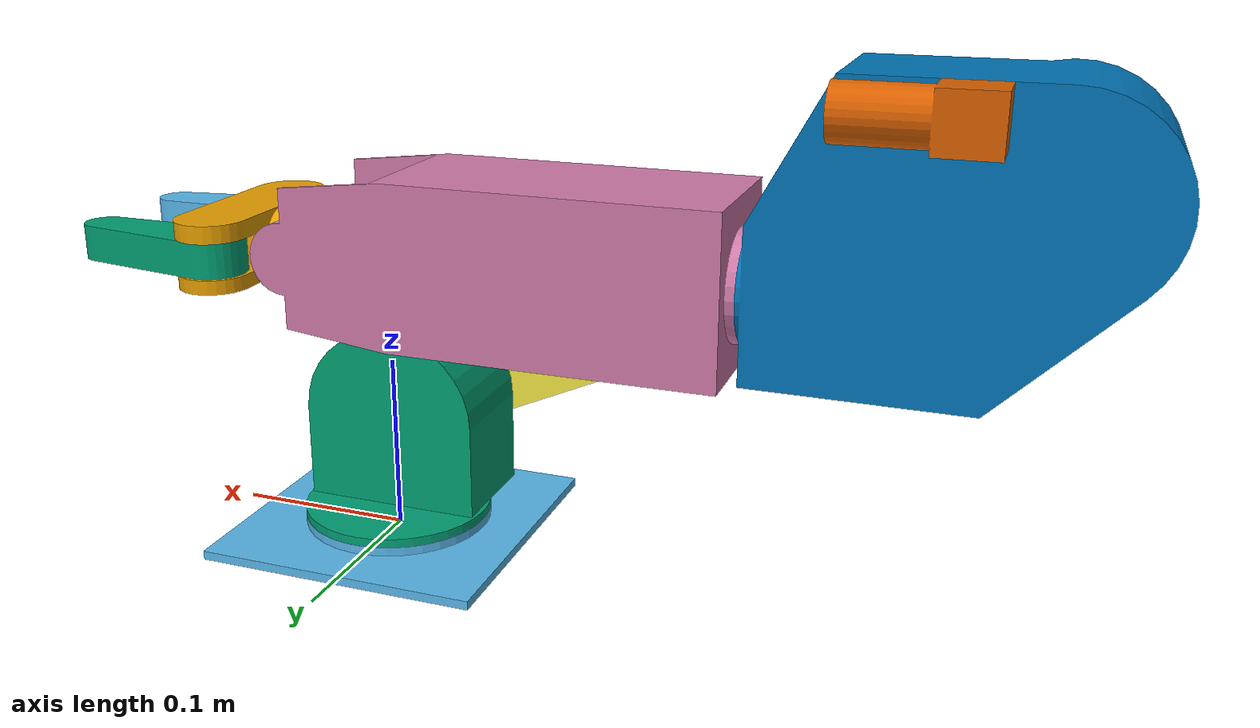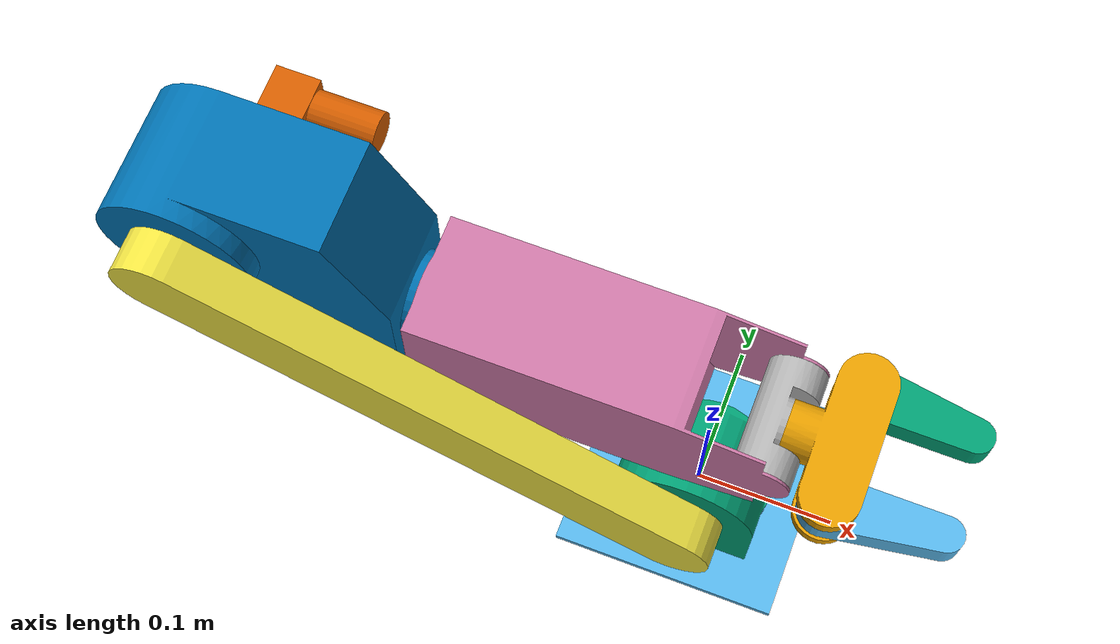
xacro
<?xml version="1.0"?>
<robot xmlns:xacro="http://www.ros.org/wiki/xacro" name="generated_robot">
    <xacro:arg name="initial_positions_file" default="initial_positions.yaml" />

    <!-- Import generated_robot urdf file -->
    <xacro:include filename="$(find robot_arm_description)/urdf/robot.urdf" />

    <!-- Import control_xacro -->
    <xacro:include filename="generated_robot.ros2_control.xacro" />

    <xacro:generated_robot_ros2_control name="FakeSystem" initial_positions_file="$(arg initial_positions_file)"/>

</robot>

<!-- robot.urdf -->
<robot name="generated_robot">
  <link name="dummy_base" />
  <joint name="dummy_joint" type="fixed">
    <parent link="dummy_base"/>
    <child link="base_link"/>
    <origin xyz="0 0 0" rpy="0 0 0"/>
  </joint>
  <link name="base_link">
    <inertial>
      <origin xyz="0 0 0.005" rpy="0 0 0" />
      <mass value="0.20722675" />
      <inertia ixx="0.00044381063" iyy="0.00044381063" izz="0.00088416748" ixy="0" ixz="0" iyz="0" />
    </inertial>
    <visual>
      <origin xyz="0 0 0" rpy="1.5707963 0 0" />
      <geometry>
        <mesh filename="package://robot_arm_description/meshes/part_001_solid_001.stl" scale="0.001 0.001 0.001" />
      </geometry>
    </visual>
    <collision>
      <origin xyz="0 0 0" rpy="1.5707963 0 0" />
      <geometry>
        <mesh filename="package://robot_arm_description/meshes/part_001_solid_001.stl" scale="0.001 0.001 0.001" />
      </geometry>
    </collision>
  </link>
  <link name="link_1">
    <inertial>
      <origin xyz="-7.77359e-05 1.085663e-05 0.052" rpy="0 0 0" />
      <mass value="0.75222554" />
      <inertia ixx="0.0014611179" iyy="0.0014603677" izz="0.0014319537" ixy="0" ixz="0" iyz="0" />
    </inertial>
    <visual>
      <origin xyz="0 0 -0.0125" rpy="1.5707963 0 0" />
      <geometry>
        <mesh filename="package://robot_arm_description/meshes/part_004_solid_004.stl" scale="0.001 0.001 0.001" />
      </geometry>
    </visual>
    <collision>
      <origin xyz="0 0 -0.0125" rpy="1.5707963 0 0" />
      <geometry>
        <mesh filename="package://robot_arm_description/meshes/part_004_solid_004.stl" scale="0.001 0.001 0.001" />
      </geometry>
    </collision>
  </link>
  <link name="link_2">
    <inertial>
      <origin xyz="-0.17305284 -0.045749999 0.078439232" rpy="0 0 0" />
      <mass value="0.92159971" />
      <inertia ixx="0.0036781725" iyy="0.016267603" izz="0.01272767" ixy="0" ixz="0" iyz="0" />
    </inertial>
    <visual>
      <origin xyz="0 0.02095 -0.068" rpy="1.5707963 0 0" />
      <geometry>
        <mesh filename="package://robot_arm_description/meshes/part_002_solid_002.stl" scale="0.001 0.001 0.001" />
      </geometry>
    </visual>
    <collision>
      <origin xyz="0 0.02095 -0.068" rpy="1.5707963 0 0" />
      <geometry>
        <mesh filename="package://robot_arm_description/meshes/part_002_solid_002.stl" scale="0.001 0.001 0.001" />
      </geometry>
    </collision>
  </link>
  <link name="link_3">
    <inertial>
      <origin xyz="0.045797883 0.04535 -0.023750007" rpy="0 0 0" />
      <mass value="2.40023" />
      <inertia ixx="0.006297151" iyy="0.012367358" izz="0.0093611186" ixy="0" ixz="0" iyz="0" />
    </inertial>
    <visual>
      <origin xyz="0.34610569 0.0517 -0.22487846" rpy="1.5707963 0 0" />
      <geometry>
        <mesh filename="package://robot_arm_description/meshes/part_003_solid_003.stl" scale="0.001 0.001 0.001" />
      </geometry>
    </visual>
    <collision>
      <origin xyz="0.34610569 0.0517 -0.22487846" rpy="1.5707963 0 0" />
      <geometry>
        <mesh filename="package://robot_arm_description/meshes/part_003_solid_003.stl" scale="0.001 0.001 0.001" />
      </geometry>
    </collision>
  </link>
  <link name="camera">
    <inertial>
      <origin xyz="-0.28386569 0.0535 0.26287846" rpy="0 0 0" />
      <mass value="0.062997497" />
      <inertia ixx="8.8301445e-06" iyy="3.3693688e-05" izz="3.3693693e-05" ixy="0" ixz="0" iyz="0" />
    </inertial>
    <visual>
      <origin xyz="0 0 0" rpy="1.5707963 0 0" />
      <geometry>
        <mesh filename="package://robot_arm_description/meshes/part_010_solid_010.stl" scale="0.001 0.001 0.001" />
      </geometry>
    </visual>
    <collision>
      <origin xyz="0 0 0" rpy="1.5707963 0 0" />
      <geometry>
        <mesh filename="package://robot_arm_description/meshes/part_010_solid_010.stl" scale="0.001 0.001 0.001" />
      </geometry>
    </collision>
  </link>
  <link name="link_4">
    <inertial>
      <origin xyz="0.13742708 -0.003 9.55e-10" rpy="0 0 0" />
      <mass value="1.6739517" />
      <inertia ixx="0.0021649777" iyy="0.010966021" izz="0.010769611" ixy="0" ixz="0" iyz="0" />
    </inertial>
    <visual>
      <origin xyz="0.20710569 0 -0.16487846" rpy="1.5707963 0 0" />
      <geometry>
        <mesh filename="package://robot_arm_description/meshes/part_006_solid_006.stl" scale="0.001 0.001 0.001" />
      </geometry>
    </visual>
    <collision>
      <origin xyz="0.20710569 0 -0.16487846" rpy="1.5707963 0 0" />
      <geometry>
        <mesh filename="package://robot_arm_description/meshes/part_006_solid_006.stl" scale="0.001 0.001 0.001" />
      </geometry>
    </collision>
  </link>
  <link name="link_5">
    <inertial>
      <origin xyz="6.6e-10 -0.041 4.77e-09" rpy="0 0 0" />
      <mass value="0.095084454" />
      <inertia ixx="6.3389636e-05" iyy="2.5355854e-05" izz="6.3389636e-05" ixy="0" ixz="0" iyz="0" />
    </inertial>
    <visual>
      <origin xyz="-0.042894309 -0.038 -0.16487846" rpy="1.5707963 0 0" />
      <geometry>
        <mesh filename="package://robot_arm_description/meshes/part_005_solid_005.stl" scale="0.001 0.001 0.001" />
      </geometry>
    </visual>
    <collision>
      <origin xyz="-0.042894309 -0.038 -0.16487846" rpy="1.5707963 0 0" />
      <geometry>
        <mesh filename="package://robot_arm_description/meshes/part_005_solid_005.stl" scale="0.001 0.001 0.001" />
      </geometry>
    </collision>
  </link>
  <link name="link_6">
    <inertial>
      <origin xyz="0.030000001 0 4.77e-09" rpy="0 0 0" />
      <mass value="0.16141715" />
      <inertia ixx="0.00021218407" iyy="6.7849009e-05" izz="0.00024118535" ixy="0" ixz="0" iyz="0" />
    </inertial>
    <visual>
      <origin xyz="-0.046894309 0.003 -0.16487846" rpy="1.5707963 0 0" />
      <geometry>
        <mesh filename="package://robot_arm_description/meshes/part_007_solid_007.stl" scale="0.001 0.001 0.001" />
      </geometry>
    </visual>
    <collision>
      <origin xyz="-0.046894309 0.003 -0.16487846" rpy="1.5707963 0 0" />
      <geometry>
        <mesh filename="package://robot_arm_description/meshes/part_007_solid_007.stl" scale="0.001 0.001 0.001" />
      </geometry>
    </collision>
  </link>
  <link name="right_gripper">
    <inertial>
      <origin xyz="0.034372258 -0.00010536384 -0.0099999952" rpy="0 0 0" />
      <mass value="0.071346324" />
      <inertia ixx="9.9848345e-06" iyy="6.7599466e-05" izz="7.2827879e-05" ixy="0" ixz="0" iyz="0" />
    </inertial>
    <visual>
      <origin xyz="-0.086894309 0.043 -0.17387846" rpy="1.5707963 0 0" />
      <geometry>
        <mesh filename="package://robot_arm_description/meshes/part_008_solid_008.stl" scale="0.001 0.001 0.001" />
      </geometry>
    </visual>
    <collision>
      <origin xyz="-0.086894309 0.043 -0.17387846" rpy="1.5707963 0 0" />
      <geometry>
        <mesh filename="package://robot_arm_description/meshes/part_008_solid_008.stl" scale="0.001 0.001 0.001" />
      </geometry>
    </collision>
  </link>
  <link name="left_gripper">
    <inertial>
      <origin xyz="0.034372258 0.00010536384 -0.0099999952" rpy="0 0 0" />
      <mass value="0.071346324" />
      <inertia ixx="9.9848345e-06" iyy="6.7599466e-05" izz="7.2827879e-05" ixy="0" ixz="0" iyz="0" />
    </inertial>
    <visual>
      <origin xyz="-0.086894309 -0.037 -0.17387846" rpy="1.5707963 0 0" />
      <geometry>
        <mesh filename="package://robot_arm_description/meshes/part_009_solid_009.stl" scale="0.001 0.001 0.001" />
      </geometry>
    </visual>
    <collision>
      <origin xyz="-0.086894309 -0.037 -0.17387846" rpy="1.5707963 0 0" />
      <geometry>
        <mesh filename="package://robot_arm_description/meshes/part_009_solid_009.stl" scale="0.001 0.001 0.001" />
      </geometry>
    </collision>
  </link>
  <joint name="link_1_joint" type="continuous">
    <origin xyz="0 0 0.0125" rpy="0 0 0" />
    <parent link="base_link" />
    <child link="link_1" />
    <axis xyz="0 0 -1" />
    <limit effort="10" velocity="5" />
  </joint>
  <joint name="link_2_joint" type="revolute">
    <origin xyz="0 -0.02095 0.0555" rpy="0 0 0" />
    <parent link="link_1" />
    <child link="link_2" />
    <axis xyz="0 1 0" />
    <limit lower="-0.75" upper="3.05" effort="10" velocity="5" />
  </joint>
  <joint name="link_3_joint" type="continuous">
    <origin xyz="-0.34610569 -0.03075 0.15687846" rpy="0 0 0" />
    <parent link="link_2" />
    <child link="link_3" />
    <axis xyz="0 1 0" />
    <limit effort="10" velocity="5" />
  </joint>
  <joint name="camera_joint" type="fixed">
    <origin xyz="0.34610569 0.0517 -0.22487846" rpy="0 0 0" />
    <parent link="link_3" />
    <child link="camera" />
  </joint>
  <joint name="link_4_joint" type="continuous">
    <origin xyz="-0.20710569 0 0.16487846" rpy="0 0 0" />
    <parent link="camera" />
    <child link="link_4" />
    <axis xyz="1 0 0" />
    <limit effort="10" velocity="5" />
  </joint>
  <joint name="link_5_joint" type="revolute">
    <origin xyz="0.25 0.038 0" rpy="0 0 0" />
    <parent link="link_4" />
    <child link="link_5" />
    <axis xyz="0 1 0" />
    <limit lower="-1.57" upper="1.57" effort="10" velocity="5" />
  </joint>
  <joint name="link_6_joint" type="continuous">
    <origin xyz="0.004 -0.041 0" rpy="0 0 0" />
    <parent link="link_5" />
    <child link="link_6" />
    <axis xyz="1 0 0" />
    <limit effort="10" velocity="5" />
  </joint>
  <joint name="right_gripper_joint" type="revolute">
    <origin xyz="0.04 -0.04 0.009" rpy="0 0 0" />
    <parent link="link_6" />
    <child link="right_gripper" />
    <axis xyz="0 0 1" />
    <limit lower="-1.57" upper="1.57" effort="10" velocity="5" />
  </joint>
  <joint name="left_gripper_joint" type="revolute">
    <origin xyz="0.04 0.04 0.009" rpy="0 0 0" />
    <parent link="link_6" />
    <child link="left_gripper" />
    <axis xyz="0 0 -1" />
    <limit lower="-1.57" upper="1.57" effort="10" velocity="5" />
  </joint>
</robot>
